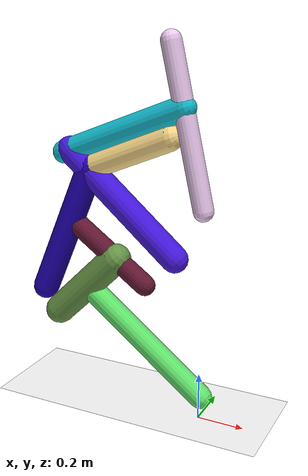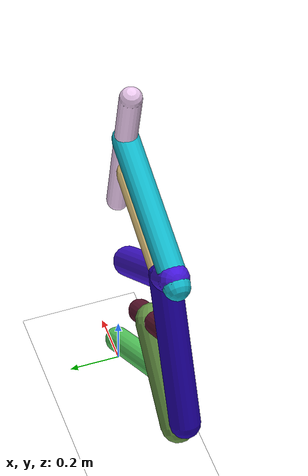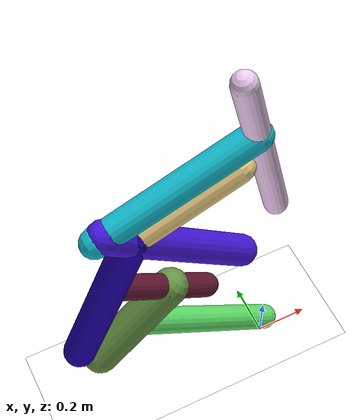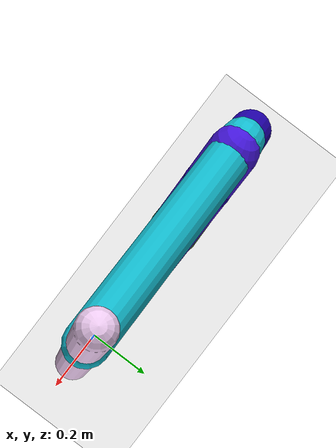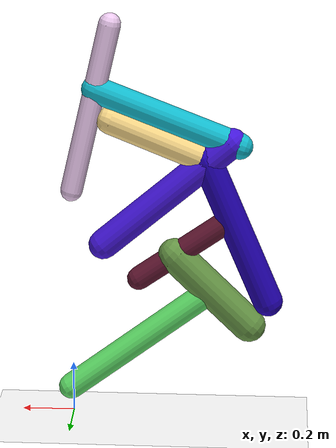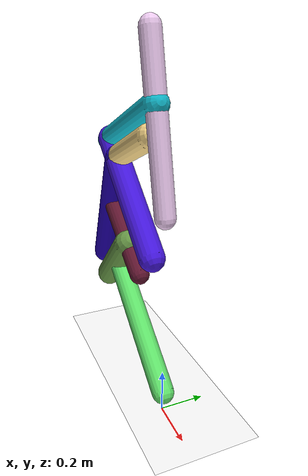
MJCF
<mujoco model="morphology">
  <option timestep="0.01"/>
  <default>
    <default class="/"/>
    <default class="0/"/>
    <default class="0/1/"/>
    <default class="0/1/2/"/>
    <default class="0/1/2/3/"/>
    <default class="0/1/2/3/4/"/>
    <default class="0/1/2/3/4/5/"/>
    <default class="0/1/2/3/4/5/6/"/>
    <default class="0/1/2/3/4/5/6/7/"/>
  </default>
  <asset>
    <texture name="texplane" type="2d" builtin="checker" rgb1="0.10000000000000001 0.20000000000000001 0.29999999999999999" rgb2="0.20000000000000001 0.29999999999999999 0.40000000000000002" width="300" height="300"/>
    <material name="MatPlane" class="/" texture="texplane" texrepeat="20 20" specular="1" shininess="1" reflectance="0.5"/>
  </asset>
  <worldbody>
    <light name="//unnamed_light_0" class="/" directional="true" pos="0 0 1.5" dir="0 0 -1.3" cutoff="100" exponent="1" diffuse="1 1 1" specular="0.10000000000000001 0.10000000000000001 0.10000000000000001"/>
    <geom name="ground" class="/" type="plane" size="15 15 0.5" material="MatPlane" rgba="1 1 1 1"/>
    <site name="body" class="/" size="9.9999999999999995e-07 9.9999999999999995e-07 9.9999999999999995e-07" pos="0 0 0.90764895677566526"/>
    <body pos="0 0 0.90764895677566526" name="0/">
      <joint name="0/rootx/" class="/" type="slide" axis="1 0 0" limited="false" stiffness="0" armature="0" damping="0"/>
      <joint name="0/rootz/" class="/" type="slide" axis="0 0 1" limited="false" stiffness="0" armature="0" damping="0"/>
      <joint name="0/rooty/" class="/" type="hinge" axis="0 1 0" limited="false" stiffness="0" armature="0" damping="0"/>
      <geom name="0/geom" class="0/" type="capsule" contype="1" conaffinity="1" condim="3" size="0.041895437908112183" rgba="0.93795825693144552 0.80186830876119342 0.95070234518416674 1" friction="0.59999999999999998 0.10000000000000001 0.10000000000000001" fromto="0 0 0 -0.14853391416827899 0 0.64592817565703431"/>
      <site name="0/end0" class="0/" size="0.0050000000000000001" pos="-0.14853391416827899 0 0.64592817565703431"/>
      <site name="0/attach1" class="0/" size="9.9999999999999995e-07 9.9999999999999995e-07 9.9999999999999995e-07" pos="-0.091182751499438094 0 0.396525659861719"/>
      <body pos="-0.091182751499438094 0 0.396525659861719" name="0/1/">
        <joint name="0/1/joint/" class="0/" type="hinge" axis="0 1 0" limited="true" range="-49.29009709656259 49.29009709656259"/>
        <geom name="0/1/geom" class="0/1/" type="capsule" contype="1" conaffinity="1" condim="3" size="0.050256881657772534" rgba="0.071082818505926793 0.73725291175017171 0.81227710631160421 1" friction="0.59999999999999998 0.10000000000000001 0.10000000000000001" fromto="0 0 0 -0.54062257406105574 0 -0.21070070561334742"/>
        <site name="0/1/end1" class="0/1/" size="0.0050000000000000001" pos="-0.54062257406105574 0 -0.21070070561334742"/>
        <site name="0/1/attach2" class="0/1/" size="9.9999999999999995e-07 9.9999999999999995e-07 9.9999999999999995e-07" pos="-0.51094369273463791 0 -0.1991337427499269"/>
        <body pos="-0.51094369273463791 0 -0.1991337427499269" name="0/1/2/">
          <joint name="0/1/2/joint/" class="0/1/" type="hinge" axis="0 1 0" limited="true" range="-64.39911783982518 64.39911783982518"/>
          <geom name="0/1/2/geom" class="0/1/2/" type="capsule" contype="1" conaffinity="1" condim="3" size="0.057036737670640464" rgba="0.27004448537616255 0.086658853991611995 0.86793043797494851 1" friction="0.59999999999999998 0.10000000000000001 0.10000000000000001" fromto="0 0 0 0.48234843195330579 0 -0.41227594872977746"/>
          <site name="0/1/2/end2" class="0/1/2/" size="0.0050000000000000001" pos="0.48234843195330579 0 -0.41227594872977746"/>
          <site name="0/1/2/attach3" class="0/1/2/" size="9.9999999999999995e-07 9.9999999999999995e-07 9.9999999999999995e-07" pos="0.083282208600416477 0 -0.071183504057439936"/>
          <body pos="0.083282208600416477 0 -0.071183504057439936" name="0/1/2/3/">
            <joint name="0/1/2/3/joint/" class="0/1/2/" type="hinge" axis="0 1 0" limited="true" range="-53.070224647866752 53.070224647866752"/>
            <geom name="0/1/2/3/geom" class="0/1/2/3/" type="capsule" contype="1" conaffinity="1" condim="3" size="0.051552455480402298" rgba="0.96184326803084841 0.83565286394321803 0.527083592693953 1" friction="0.59999999999999998 0.10000000000000001 0.10000000000000001" fromto="0 0 0 0.37261691173797606 0 0.151583861346541"/>
            <site name="0/1/2/3/end3" class="0/1/2/3/" size="0.0050000000000000001" pos="0.37261691173797606 0 0.151583861346541"/>
            <site name="0/1/2/3/attach4" class="0/1/2/3/" size="9.9999999999999995e-07 9.9999999999999995e-07 9.9999999999999995e-07" pos="0.010263585584022888 0 0.0041753175582672306"/>
            <body pos="0.010263585584022888 0 0.0041753175582672306" name="0/1/2/3/4/">
              <joint name="0/1/2/3/4/joint/" class="0/1/2/3/" type="hinge" axis="0 1 0" limited="true" range="-48.709531080527725 48.709531080527725"/>
              <geom name="0/1/2/3/4/geom" class="0/1/2/3/4/" type="capsule" contype="1" conaffinity="1" condim="3" size="0.057669642633643034" rgba="0.13684975830707291 0.0047399019580648405 0.70583430606692665 1" friction="0.59999999999999998 0.10000000000000001 0.10000000000000001" fromto="0 0 0 -0.23970336741582943 0 -0.56383515092034298"/>
              <site name="0/1/2/3/4/end4" class="0/1/2/3/4/" size="0.0050000000000000001" pos="-0.23970336741582943 0 -0.56383515092034298"/>
              <site name="0/1/2/3/4/attach5" class="0/1/2/3/4/" size="9.9999999999999995e-07 9.9999999999999995e-07 9.9999999999999995e-07" pos="-0.098179525312282329 0 -0.23093988235762555"/>
              <body pos="-0.098179525312282329 0 -0.23093988235762555" name="0/1/2/3/4/5/">
                <joint name="0/1/2/3/4/5/joint/" class="0/1/2/3/4/" type="hinge" axis="0 1 0" limited="true" range="-48.418655870896863 48.418655870896863"/>
                <geom name="0/1/2/3/4/5/geom" class="0/1/2/3/4/5/" type="capsule" contype="1" conaffinity="1" condim="3" size="0.044798681687638772" rgba="0.37874507549514136 0.087666018815514501 0.19137519457336027 1" friction="0.59999999999999998 0.10000000000000001 0.10000000000000001" fromto="0 0 0 0.35254427545665656 0 -0.2497600584257389"/>
                <site name="0/1/2/3/4/5/end5" class="0/1/2/3/4/5/" size="0.0050000000000000001" pos="0.35254427545665656 0 -0.2497600584257389"/>
                <site name="0/1/2/3/4/5/attach6" class="0/1/2/3/4/5/" size="9.9999999999999995e-07 9.9999999999999995e-07 9.9999999999999995e-07" pos="0.21491815471777445 0 -0.15225880723643395"/>
                <body pos="0.21491815471777445 0 -0.15225880723643395" name="0/1/2/3/4/5/6/">
                  <joint name="0/1/2/3/4/5/6/joint/" class="0/1/2/3/4/5/" type="hinge" axis="0 1 0" limited="true" range="-64.323669515450945 64.323669515450945"/>
                  <geom name="0/1/2/3/4/5/6/geom" class="0/1/2/3/4/5/6/" type="capsule" contype="1" conaffinity="1" condim="3" size="0.06513191451211936" rgba="0.40166259850606234 0.58635875231067014 0.27264118066126741 1" friction="0.59999999999999998 0.10000000000000001 0.10000000000000001" fromto="0 0 0 -0.28534226631204251 0 -0.28011315327257225"/>
                  <site name="0/1/2/3/4/5/6/end6" class="0/1/2/3/4/5/6/" size="0.0050000000000000001" pos="-0.28534226631204251 0 -0.28011315327257225"/>
                  <site name="0/1/2/3/4/5/6/attach7" class="0/1/2/3/4/5/6/" size="9.9999999999999995e-07 9.9999999999999995e-07 9.9999999999999995e-07" pos="-0.1418508666727189 0 -0.13925134215724697"/>
                  <body pos="-0.1418508666727189 0 -0.13925134215724697" name="0/1/2/3/4/5/6/7/">
                    <geom name="0/1/2/3/4/5/6/7/geom" class="0/1/2/3/4/5/6/7/" type="capsule" contype="1" conaffinity="1" condim="3" size="0.049537688501414295" rgba="0.37814997503962933 0.88669922081301189 0.41550461512764314 1" friction="0.59999999999999998 0.10000000000000001 0.10000000000000001" fromto="0 0 0 0.54264980854330602 0 -0.4155826849216121"/>
                    <site name="0/1/2/3/4/5/6/7/end7" class="0/1/2/3/4/5/6/7/" size="0.0050000000000000001" pos="0.54264980854330602 0 -0.4155826849216121"/>
                  </body>
                </body>
              </body>
            </body>
          </body>
        </body>
      </body>
      <camera name="0/side" class="0/" mode="trackcom" pos="0.40000000000000002 -4 0.20000000000000001" quat="0.70699999999999996 0.70699999999999996 0 0"/>
    </body>
  </worldbody>
  <actuator>
    <motor name="0/1/motor" class="0/1/" ctrllimited="true" ctrlrange="-1 1" gear="73" joint="0/1/joint/"/>
    <motor name="0/1/2/motor" class="0/1/2/" ctrllimited="true" ctrlrange="-1 1" gear="65" joint="0/1/2/joint/"/>
    <motor name="0/1/2/3/motor" class="0/1/2/3/" ctrllimited="true" ctrlrange="-1 1" gear="68" joint="0/1/2/3/joint/"/>
    <motor name="0/1/2/3/4/motor" class="0/1/2/3/4/" ctrllimited="true" ctrlrange="-1 1" gear="67" joint="0/1/2/3/4/joint/"/>
    <motor name="0/1/2/3/4/5/motor" class="0/1/2/3/4/5/" ctrllimited="true" ctrlrange="-1 1" gear="76" joint="0/1/2/3/4/5/joint/"/>
    <motor name="0/1/2/3/4/5/6/motor" class="0/1/2/3/4/5/6/" ctrllimited="true" ctrlrange="-1 1" gear="70" joint="0/1/2/3/4/5/6/joint/"/>
  </actuator>
  <sensor>
    <subtreelinvel name="velocity" body="0/"/>
  </sensor>
</mujoco>
